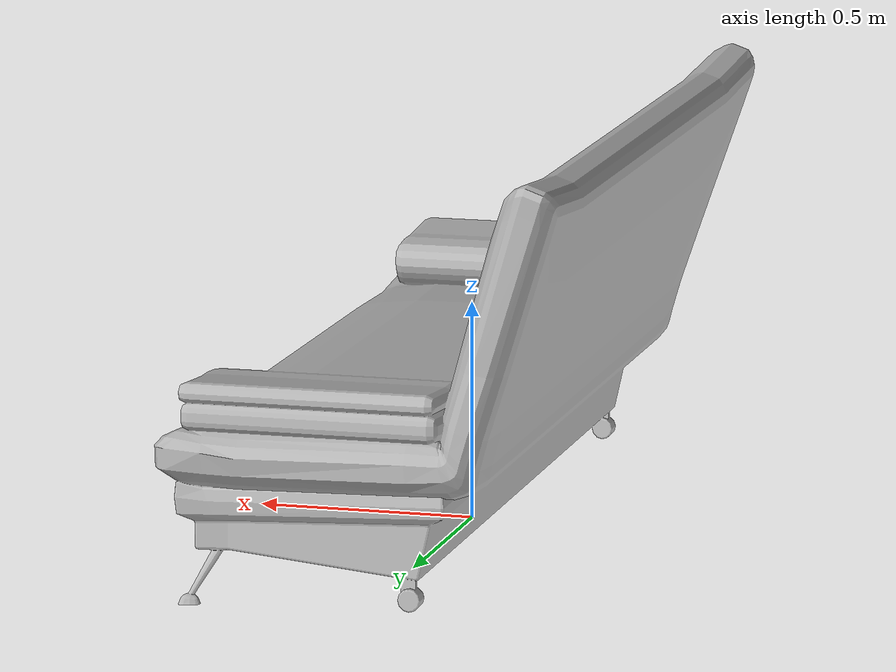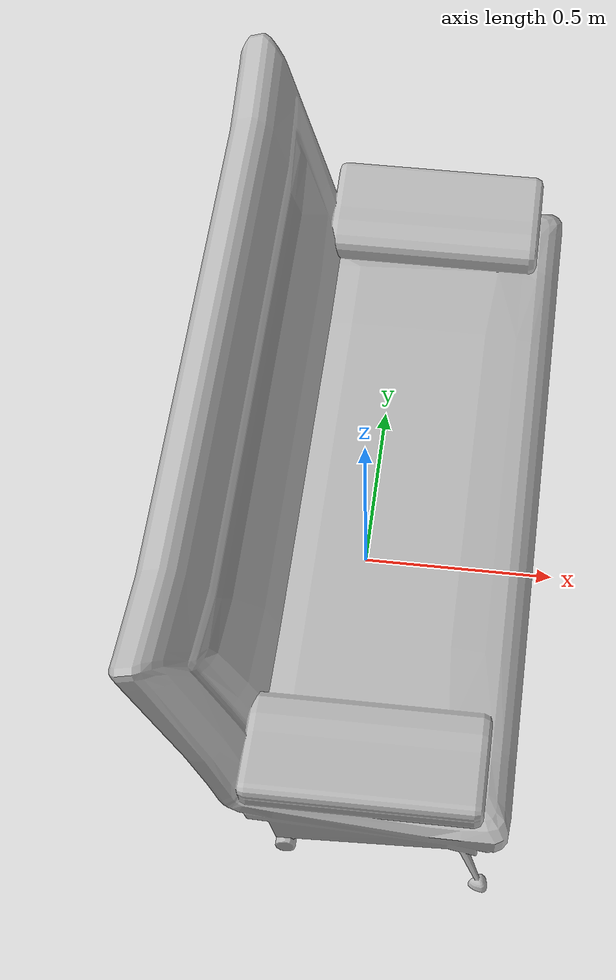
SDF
<?xml version='1.0'?>
<sdf version='1.4'>
  <model name='382'>
    <pose>0 0 0 0 0 0</pose>
    <static>true</static>
    <link name='link'>
      <collision name='collision'>
        <pose>0 0 0 0 0 0</pose>
        <geometry>
          <box>
            <size>0.884506 1.99365 2</size>
          </box>
        </geometry>
      </collision>
      <visual name='visual'>
        <pose>0 0 0 0 0 0</pose>
        <geometry>
          <mesh><uri>model://382/382.dae</uri></mesh>
        </geometry>
      </visual>
    </link>
  </model>
</sdf>
